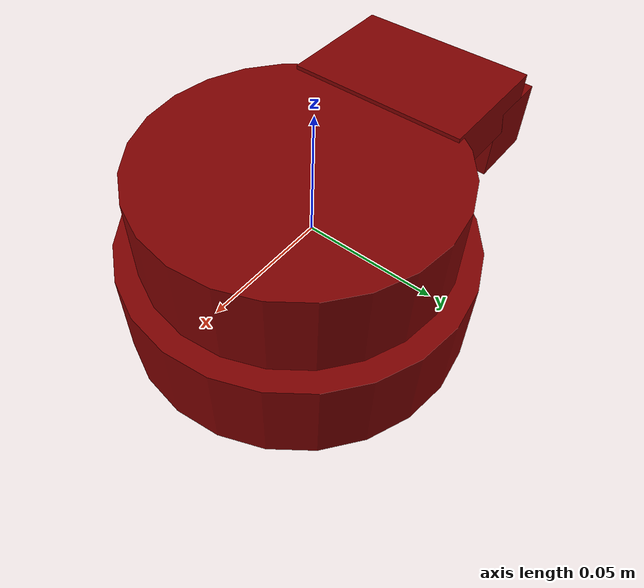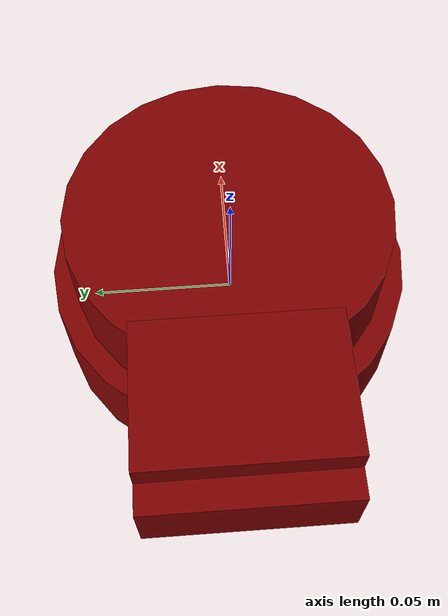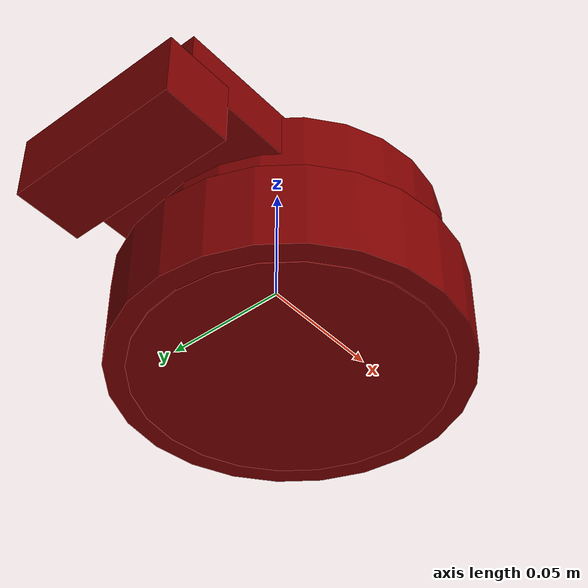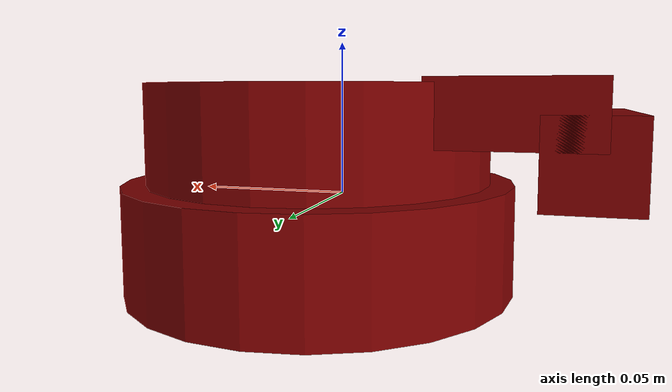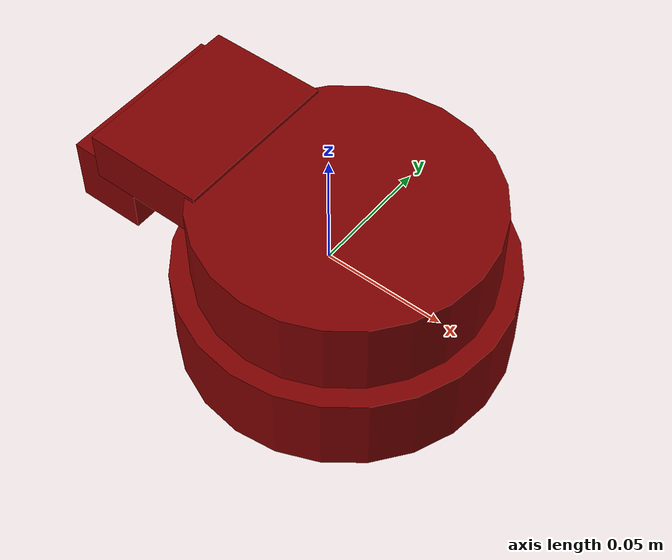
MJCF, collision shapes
<mujoco model="model">
  <option timestep="0.002" gravity="0.0 0.0 -9.81"/>
  <compiler angle="radian"/>
  <asset>
    <texture file="visuals/T_BC001.png" name="lid_material" type="2d"/>
    <material name="lid_material" rgba="1 1 1 1.0" texture="lid_material" shininess="0.5" specular="5"/>
    <mesh file="visuals/lid.obj" name="lid_vis"/>
  </asset>
  <default>
    <default class="visual">
      <geom conaffinity="0" contype="0" group="1" type="mesh"/>
    </default>
    <default class="collision">
      <geom group="0" rgba="0.5 0 0 0.5"/>
    </default>
    <default class="spawn">
      <geom group="0" rgba="1 1 1 0.5" contype="0" conaffinity="0"/>
      <site group="0" rgba="1 1 1 0.5"/>
    </default>
    <default class="region">
      <geom group="1" conaffinity="0" contype="0" rgba="0 1 0 0"/>
    </default>
  </default>
  <worldbody>
    <body>
      <body name="object">
        <geom mesh="lid_vis" type="mesh" solimp="0.998 0.998 0.001" solref="0.001 1" friction="0.95 0.3 0.1" class="visual" material="lid_material"/>
        <geom class="collision" type="cylinder" pos="0.007954560354196326 -1.7491270712963886e-05 0.002087433767682584" size="0.057080235332250595 0.03464759141206741" quat="1.0 0.0 0.0 0.0" density="1000.0"/>
        <geom class="collision" type="cylinder" pos="0.007954560354196326 -1.7491270712963886e-05 -0.014" size="0.065 0.018" quat="1.0 0.0 0.0 0.0" density="1000.0"/>
        <geom class="collision" type="box" pos="-0.05736822342143129 0.0004381601615628082 0.02818583412206796" size="0.024433966726064682 0.03465075045824051 0.010062074288725853" quat="1.0 0.0 0.0 0.0" density="1000.0"/>
        <geom class="collision" type="box" pos="-0.07796800216302942 0.0004381601615628082 0.014916320276624234" size="0.013716255314648151 0.03465075045824051 0.01314975880086422" quat="1.0 0.0 0.0 0.0" density="1000.0"/>
        <geom class="region" name="reg_main" density="0" type="box" pos="-0.007426780000000001 -0.004221369999999995 0.0022311799999999993" size="0.083625 0.08132349999999999 0.034414"/>
      </body>
    </body>
  </worldbody>
</mujoco>
